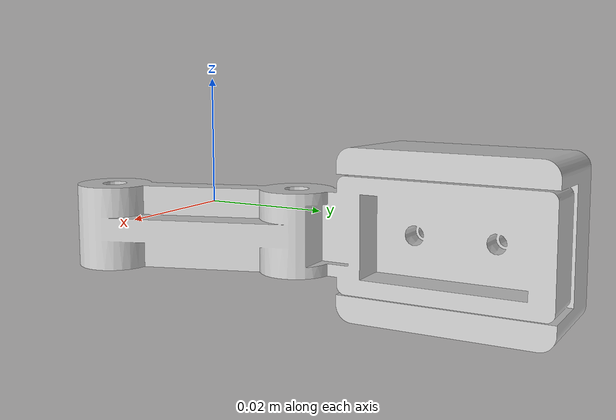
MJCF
<mujoco model="gripper_right1">
  <default>
    <default class="visual">
      <geom group="1" type="mesh" contype="0" conaffinity="0"/>
    </default>
    <default class="collision">
      <geom group="0" type="mesh"/>
    </default>
  </default>
  <asset>
    <material name="material_0.002" specular="0.0" shininess="0.0" rgba="0.800000 0.800000 0.800000 1.000000"/>
    <mesh file="gripper_right1.obj"/>
  </asset>
  <worldbody>
    <body name="gripper_right1">
      <geom material="material_0.002" mesh="gripper_right1" class="visual"/>
      <geom mesh="gripper_right1" class="collision"/>
    </body>
  </worldbody>
</mujoco>
